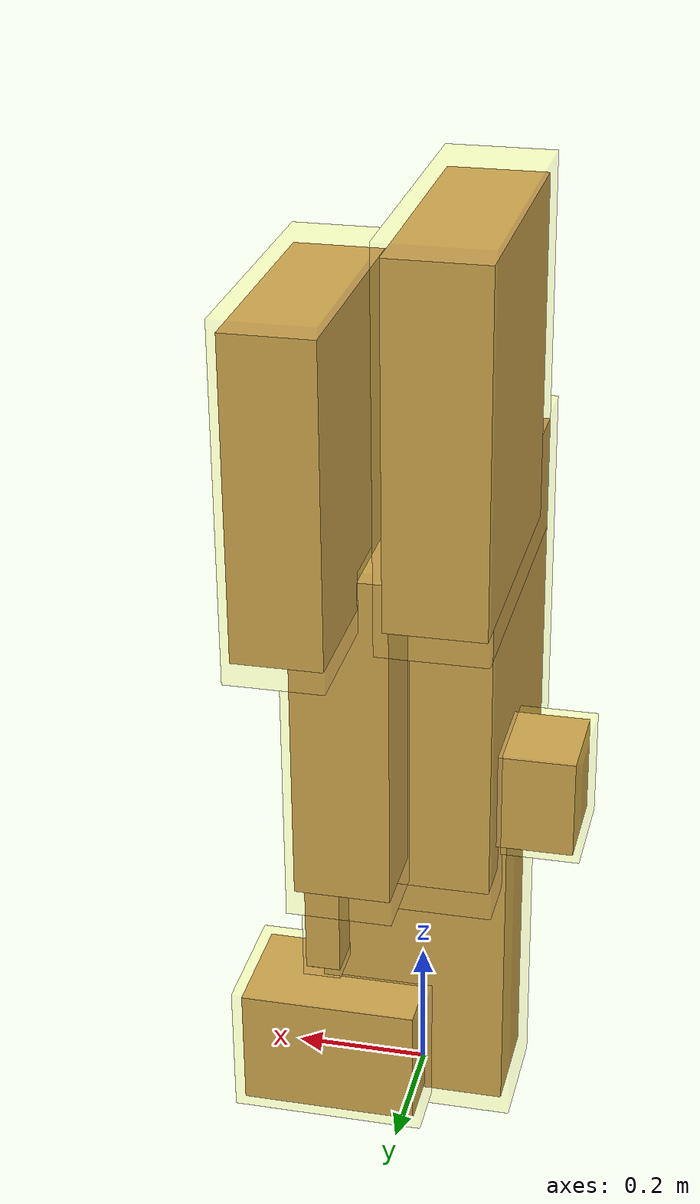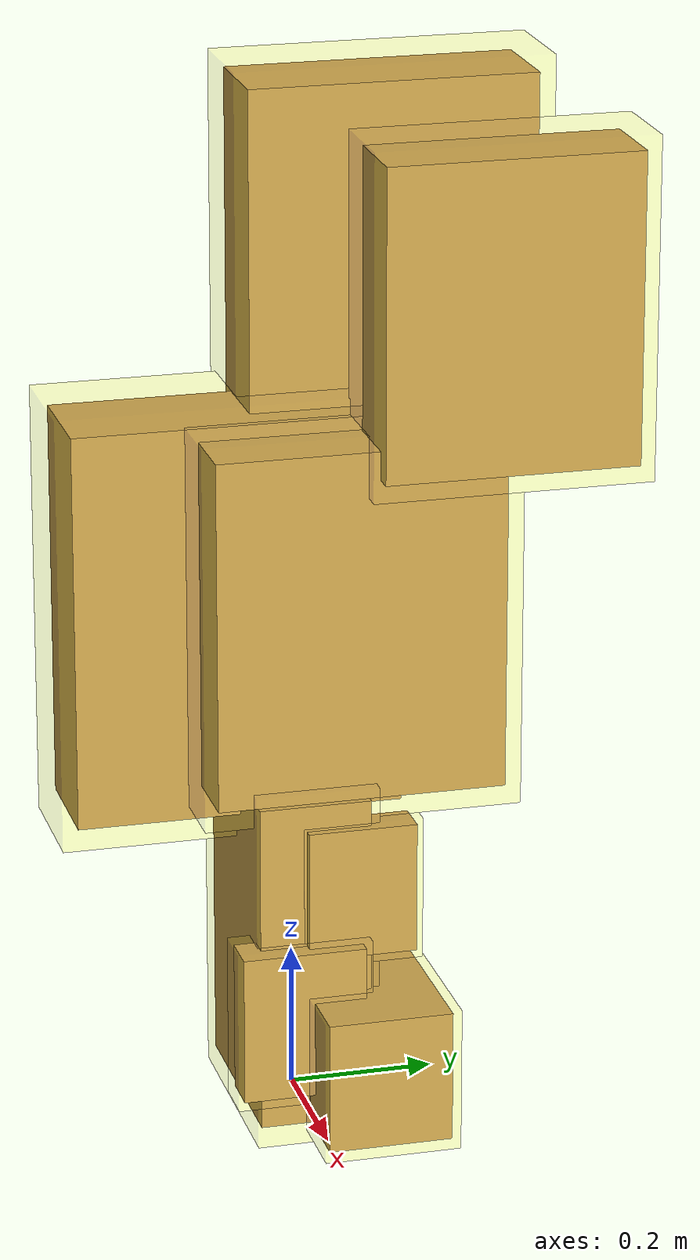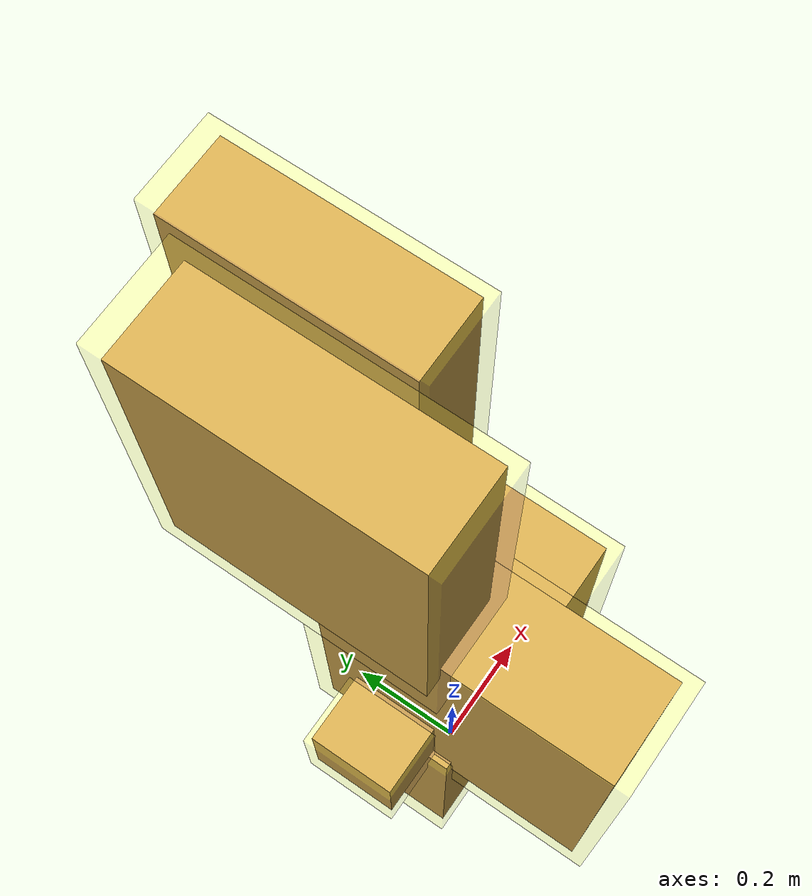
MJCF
<mujoco model="pon-ornispelagus">
    <compiler angle="degree" />
    <default>
        <motor ctrlrange="-1.0 1.0" ctrllimited="true" gear="15.6332" />
        <geom friction="1 0.5 0.5" solref=".02 1" solimp="0 .8 .01" material="self" density="50" />
        <joint limited="true" armature="0.000172747" damping="0.000410838" stiffness="0.000977078" solreflimit=".04 1"
            solimplimit="0 .8 .03" />
    </default>
    <asset>
        <material name="self" rgba=".8 .6 .4 1" />
    </asset>

    <worldbody>
        <body name="seg0" pos="0 0 0.2328752">

      <camera name="floating" pos="-1.38 0 0.69" xyaxes="0 -1 0 .5 0 1" mode="trackcom" fovy="70" />
      <camera name="egocentric" pos="0.30 0 .11" xyaxes="0 -1 0 0 0 1" fovy="90" />
          <geom name="seg0_geom" type="box" pos="0 0 0" size="0.1382197 0.0771452 0.2328752" euler="0 0 0" />
          <site name="seg0_site" type="box" pos="0 0 0" size="0.1520416 0.08485972 0.2561627" zaxis="0 0 1" rgba="1 1 0 0.15" />

          <body name="seg1" pos="-0.1319067 0.02453935 0.307045">
            <joint name="seg0_to_1" range="-75 75" type="hinge" axis="0 0 1" pos="0.08436245 -0.02811942 -0.1768 "/>
            <geom name="seg1_geom" type="box" pos="0 0 0" size="0.1052568 0.06870091 0.07416978" euler="0.000898551 0.001092807 0.004466458" />
            <site name="seg1_site" type="box" pos="0 0 0" size="0.1157825 0.07557101 0.08158676" zaxis="0 0 1" rgba="1 1 0 0.15" />
          </body>

          <body name="seg2" pos="0.1382197 -0.02231425 -0.07413609">
            <joint name="seg0_to_2" range="-75 75" type="hinge" axis="0 1 0" pos="-0.0884 0.0255697 -0.02062169 "/>
            <geom name="seg2_geom" type="box" pos="0 0 0" size="0.02921801 0.08524108 0.1044147" euler="0.0008493469 0.003078558 0.0009179028" />
            <site name="seg2_site" type="box" pos="0 0 0" size="0.03213982 0.09376519 0.1148561" zaxis="0 0 1" rgba="1 1 0 0.15" />

            <body name="seg3" pos="-0.0142098 0.08524469 0.179198">
              <joint name="seg2_to_3" range="-75 75" type="hinge" axis="0 1 0" pos="0.04299675 -0.0884 -0.1622941 "/>
              <geom name="seg3_geom" type="box" pos="0 0 0" size="0.02572127 0.07503962 0.09191855" euler="0.0008493469 0.003078558 0.0009179028" />
              <site name="seg3_site" type="box" pos="0 0 0" size="0.02829339 0.08254358 0.1011104" zaxis="0 0 1" rgba="1 1 0 0.15" />
            </body>
          </body>

          <body name="seg4" pos="0.06041975 0.06761622 0.4767828">
            <joint name="seg0_to_4" range="-75 75" type="hinge" axis="0 1 0" pos="-0.03864215 -0.07748082 -0.1768 "/>
            <geom name="seg4_geom" type="box" pos="0 0 0" size="0.06825187 0.199119 0.2439076" euler="0 0 0" />
            <site name="seg4_site" type="box" pos="0 0 0" size="0.07507705 0.2190309 0.2682984" zaxis="0 0 1" rgba="1 1 0 0.15" />

            <body name="seg5" pos="0.03319693 0.199119 0.4186012">
              <joint name="seg4_to_5" range="-75 75" type="hinge" axis="0 1 0" pos="-0.04299675 -0.0884 -0.1622941 "/>
              <geom name="seg5_geom" type="box" pos="0 0 0" size="0.06008363 0.1752889 0.2147173" euler="0 0 0" />
              <site name="seg5_site" type="box" pos="0 0 0" size="0.066092 0.1928178 0.236189" zaxis="0 0 1" rgba="1 1 0 0.15" />
            </body>
          </body>

          <body name="seg6" pos="-0.04850844 -0.0771452 0.4628896">
            <joint name="seg0_to_6" range="-75 75" type="hinge" axis="0 1 0" pos="0.03102414 0.0884 -0.1591922 "/>
            <geom name="seg6_geom" type="box" pos="0 0 0" size="0.07734392 0.2256443 0.2763993" euler="0.0009045518 -0.0004349161 -0.004343248" />
            <site name="seg6_site" type="box" pos="0 0 0" size="0.08507831 0.2482088 0.3040393" zaxis="0 0 1" rgba="1 1 0 0.15" />

            <body name="seg7" pos="-0.03758244 0.2256521 0.4743637">
              <joint name="seg6_to_7" range="-75 75" type="hinge" axis="0 1 0" pos="0.04299675 -0.0884 -0.1622941 "/>
              <geom name="seg7_geom" type="box" pos="0 0 0" size="0.06808757 0.1986397 0.2433205" euler="0.0009045518 -0.0004349161 -0.004343248" />
              <site name="seg7_site" type="box" pos="0 0 0" size="0.07489633 0.2185037 0.2676525" zaxis="0 0 1" rgba="1 1 0 0.15" />
            </body>
          </body>

          <body name="seg8" pos="0.1137559 0.0771452 -0.1352829">
            <joint name="seg0_to_8" range="-75 75" type="hinge" axis="0 0 1" pos="-0.07275391 -0.0884 -0.001867963 "/>
            <geom name="seg8_geom" type="box" pos="0 0 0" size="0.1315131 0.08583834 0.09267141" euler="0 0 0" />
            <site name="seg8_site" type="box" pos="0 0 0" size="0.1446644 0.09442217 0.1019386" zaxis="0 0 1" rgba="1 1 0 0.15" />
          </body>
        </body>
    </worldbody>

    <actuator>
    <motor name="motor0_to_1" joint="seg0_to_1" gear="0.660296" />
    <motor name="motor0_to_2" joint="seg0_to_2" gear="0.469841" />
    <motor name="motor2_to_3" joint="seg2_to_3" gear="0.245637" />
    <motor name="motor0_to_4" joint="seg0_to_4" gear="32.9575" />
    <motor name="motor4_to_5" joint="seg4_to_5" gear="17.2305" />
    <motor name="motor0_to_6" joint="seg0_to_6" gear="61.6675" />
    <motor name="motor6_to_7" joint="seg6_to_7" gear="32.2402" />
    <motor name="motor0_to_8" joint="seg0_to_8" gear="2.01511" />
    </actuator>

    <sensor>
    <touch name="seg0_touch" site="seg0_site" />
    <touch name="seg1_touch" site="seg1_site" />
    <touch name="seg2_touch" site="seg2_site" />
    <touch name="seg3_touch" site="seg3_site" />
    <touch name="seg4_touch" site="seg4_site" />
    <touch name="seg5_touch" site="seg5_site" />
    <touch name="seg6_touch" site="seg6_site" />
    <touch name="seg7_touch" site="seg7_site" />
    <touch name="seg8_touch" site="seg8_site" />
        <velocimeter name="torso_vel" site="seg0_site" />
        <gyro name="torso_gyro" site="seg0_site" />
        <accelerometer name="torso_accel" site="seg0_site" />
    </sensor>

    <contact>
    <exclude body1="seg0" body2="seg1" />
    <exclude body1="seg0" body2="seg2" />
    <exclude body1="seg0" body2="seg3" />
    <exclude body1="seg0" body2="seg4" />
    <exclude body1="seg0" body2="seg5" />
    <exclude body1="seg0" body2="seg6" />
    <exclude body1="seg0" body2="seg7" />
    <exclude body1="seg0" body2="seg8" />
    <exclude body1="seg1" body2="seg2" />
    <exclude body1="seg1" body2="seg3" />
    <exclude body1="seg1" body2="seg4" />
    <exclude body1="seg1" body2="seg5" />
    <exclude body1="seg1" body2="seg6" />
    <exclude body1="seg1" body2="seg7" />
    <exclude body1="seg1" body2="seg8" />
    <exclude body1="seg2" body2="seg3" />
    <exclude body1="seg2" body2="seg4" />
    <exclude body1="seg2" body2="seg5" />
    <exclude body1="seg2" body2="seg6" />
    <exclude body1="seg2" body2="seg7" />
    <exclude body1="seg2" body2="seg8" />
    <exclude body1="seg3" body2="seg4" />
    <exclude body1="seg3" body2="seg5" />
    <exclude body1="seg3" body2="seg6" />
    <exclude body1="seg3" body2="seg7" />
    <exclude body1="seg3" body2="seg8" />
    <exclude body1="seg4" body2="seg5" />
    <exclude body1="seg4" body2="seg6" />
    <exclude body1="seg4" body2="seg7" />
    <exclude body1="seg4" body2="seg8" />
    <exclude body1="seg5" body2="seg6" />
    <exclude body1="seg5" body2="seg7" />
    <exclude body1="seg5" body2="seg8" />
    <exclude body1="seg6" body2="seg7" />
    <exclude body1="seg6" body2="seg8" />
    <exclude body1="seg7" body2="seg8" />
    </contact>
</mujoco>
